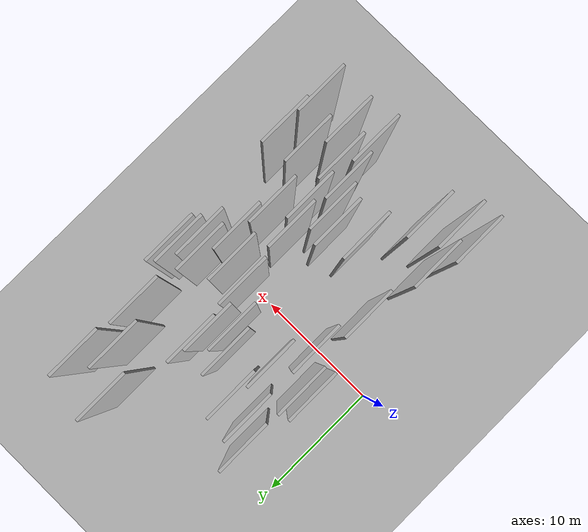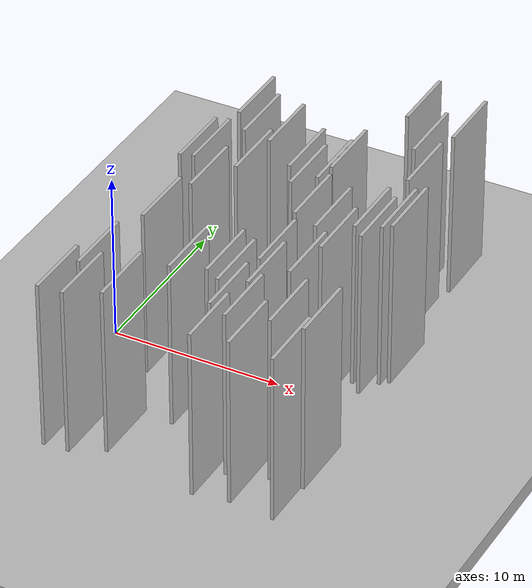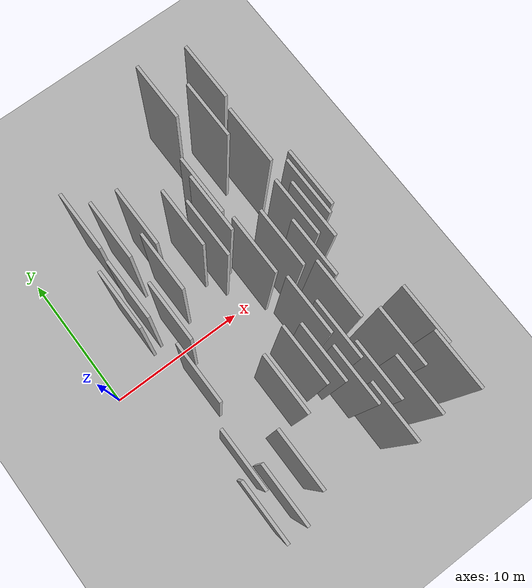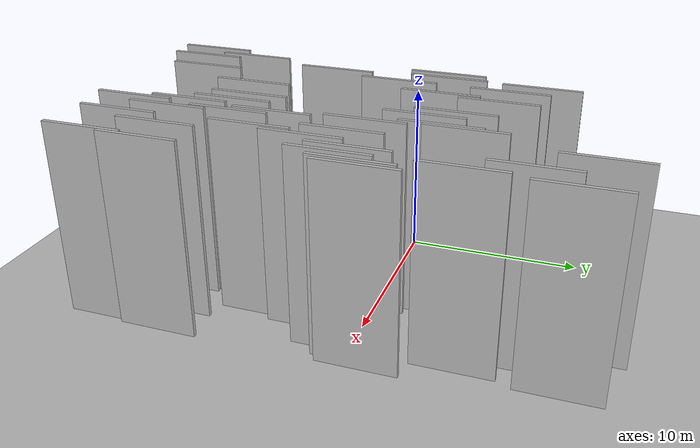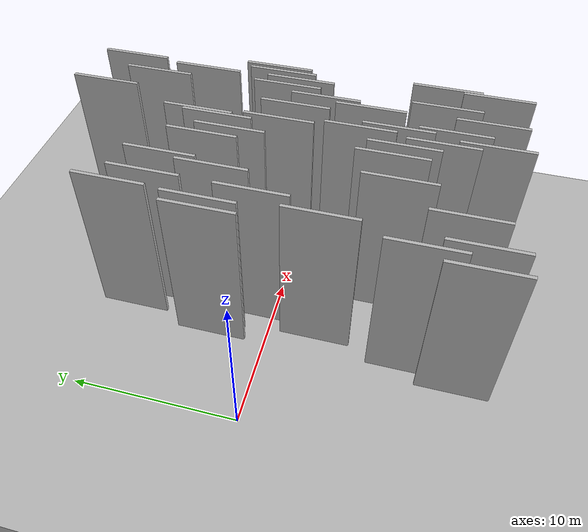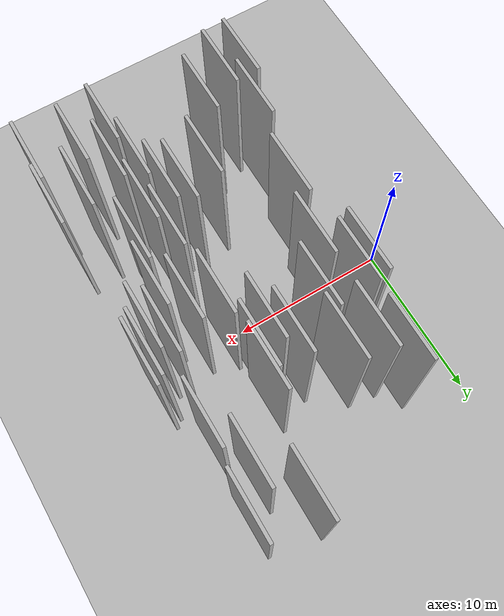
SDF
<?xml version="1.0" encoding="utf-8"?>

<sdf version="1.6">

   <world name="default">

      <gui fullscreen="0">

         <camera name="user_camera">

            <pose>-15 0 4.57585 0 0 0</pose>

            <view_controller>orbit</view_controller>

         </camera>

      </gui>

      <scene>

         <sky>

           <clouds>

             <speed>12</speed>

           </clouds>

         </sky>

         <ambient>0.4 0.4 0.4 1</ambient>

         <background>0.7 0.7 0.7 1</background>

         <shadows>1</shadows>

      </scene>

      <gravity>0 0 -9.8066</gravity>

      <magnetic_field>6e-06 2.3e-05 -4.2e-05</magnetic_field>

      <physics default="0" name="default_physics" type="ode">

         <ode>

            <solver>

               <type>quick</type>

               <iters>10</iters>

               <sor>1.0</sor>

               <use_dynamic_moi_rescaling>0</use_dynamic_moi_rescaling>

            </solver>

            <constraints>

               <cfm>0</cfm>

               <erp>0.2</erp>

               <contact_max_correcting_vel>100</contact_max_correcting_vel>

               <contact_surface_layer>0.001</contact_surface_layer>

            </constraints>

         </ode>

         <max_step_size>0.004</max_step_size>

         <real_time_factor>1</real_time_factor>

         <real_time_update_rate>250</real_time_update_rate>

      </physics>

      <light name="sun" type="directional">

         <cast_shadows>1</cast_shadows>

         <pose>0 0 10 0 0 0</pose>

         <diffuse>0.8 0.8 0.8 1</diffuse>

         <specular>0.2 0.2 0.2 1</specular>

         <attenuation>

            <range>1000</range>

            <constant>0.9</constant>

            <linear>0.01</linear>

            <quadratic>0.001</quadratic>

         </attenuation>

         <direction>-0.5 0.1 -0.9</direction>

      </light>

      <include>

         <name>ground_plane_1</name>

         <uri>model://HANNAS_ground_plane</uri>

         <pose>0 0 0  0 0 0</pose>

      </include>

      <include>

         <name>ground_plane_2</name>

         <uri>model://HANNAS_ground_plane</uri>

         <pose>100 0 0  0 0 0</pose>

      </include>

      <model name="HANNAS_wall_1">

         <static>1</static>

         <pose frame="">3.7994 2.6363 2.5 0.000000 0.000000 1.570796</pose>

         <link name="link">

            <pose frame="">0 0 5.00 0 0 0</pose>

            <collision name="collision">

               <geometry>

                  <box>

                     <size>4.00 0.2 10.00</size>

                  </box>

               </geometry>

               <max_contacts>10</max_contacts>

               <surface>

                  <contact>

                     <ode/>

                  </contact>

                  <bounce/>

                  <friction>

                     <torsional>

                        <ode/>

                     </torsional>

                     <ode/>

                  </friction>

               </surface>

            </collision>

            <visual name="visual">

               <cast_shadows>0</cast_shadows>

               <geometry>

                  <box>

                     <size>4.00 0.2 10.00</size>

                  </box>

               </geometry>

               <material>

                  <script>

                     <uri>model://HANNAS_wall/materials/scripts</uri>

                     <uri>model://HANNAS_wall/materials/textures</uri>

                     <name>vrc/HANNAS_wall</name>

                  </script>

               </material>

            </visual>

            <self_collide>0</self_collide>

            <enable_wind>0</enable_wind>

            <kinematic>0</kinematic>

         </link>

      </model>

      <model name="HANNAS_wall_2">

         <static>1</static>

         <pose frame="">15.5786 0.3871 2.5 0.000000 0.000000 1.570796</pose>

         <link name="link">

            <pose frame="">0 0 5.00 0 0 0</pose>

            <collision name="collision">

               <geometry>

                  <box>

                     <size>4.00 0.2 10.00</size>

                  </box>

               </geometry>

               <max_contacts>10</max_contacts>

               <surface>

                  <contact>

                     <ode/>

                  </contact>

                  <bounce/>

                  <friction>

                     <torsional>

                        <ode/>

                     </torsional>

                     <ode/>

                  </friction>

               </surface>

            </collision>

            <visual name="visual">

               <cast_shadows>0</cast_shadows>

               <geometry>

                  <box>

                     <size>4.00 0.2 10.00</size>

                  </box>

               </geometry>

               <material>

                  <script>

                     <uri>model://HANNAS_wall/materials/scripts</uri>

                     <uri>model://HANNAS_wall/materials/textures</uri>

                     <name>vrc/HANNAS_wall</name>

                  </script>

               </material>

            </visual>

            <self_collide>0</self_collide>

            <enable_wind>0</enable_wind>

            <kinematic>0</kinematic>

         </link>

      </model>

      <model name="HANNAS_wall_3">

         <static>1</static>

         <pose frame="">10.0864 -5.8652 2.5 0.000000 0.000000 1.570796</pose>

         <link name="link">

            <pose frame="">0 0 5.00 0 0 0</pose>

            <collision name="collision">

               <geometry>

                  <box>

                     <size>4.00 0.2 10.00</size>

                  </box>

               </geometry>

               <max_contacts>10</max_contacts>

               <surface>

                  <contact>

                     <ode/>

                  </contact>

                  <bounce/>

                  <friction>

                     <torsional>

                        <ode/>

                     </torsional>

                     <ode/>

                  </friction>

               </surface>

            </collision>

            <visual name="visual">

               <cast_shadows>0</cast_shadows>

               <geometry>

                  <box>

                     <size>4.00 0.2 10.00</size>

                  </box>

               </geometry>

               <material>

                  <script>

                     <uri>model://HANNAS_wall/materials/scripts</uri>

                     <uri>model://HANNAS_wall/materials/textures</uri>

                     <name>vrc/HANNAS_wall</name>

                  </script>

               </material>

            </visual>

            <self_collide>0</self_collide>

            <enable_wind>0</enable_wind>

            <kinematic>0</kinematic>

         </link>

      </model>

      <model name="HANNAS_wall_4">

         <static>1</static>

         <pose frame="">16.6024 1.9470 2.5 0.000000 0.000000 1.570796</pose>

         <link name="link">

            <pose frame="">0 0 5.00 0 0 0</pose>

            <collision name="collision">

               <geometry>

                  <box>

                     <size>4.00 0.2 10.00</size>

                  </box>

               </geometry>

               <max_contacts>10</max_contacts>

               <surface>

                  <contact>

                     <ode/>

                  </contact>

                  <bounce/>

                  <friction>

                     <torsional>

                        <ode/>

                     </torsional>

                     <ode/>

                  </friction>

               </surface>

            </collision>

            <visual name="visual">

               <cast_shadows>0</cast_shadows>

               <geometry>

                  <box>

                     <size>4.00 0.2 10.00</size>

                  </box>

               </geometry>

               <material>

                  <script>

                     <uri>model://HANNAS_wall/materials/scripts</uri>

                     <uri>model://HANNAS_wall/materials/textures</uri>

                     <name>vrc/HANNAS_wall</name>

                  </script>

               </material>

            </visual>

            <self_collide>0</self_collide>

            <enable_wind>0</enable_wind>

            <kinematic>0</kinematic>

         </link>

      </model>

      <model name="HANNAS_wall_5">

         <static>1</static>

         <pose frame="">16.5574 -11.0055 2.5 0.000000 0.000000 1.570796</pose>

         <link name="link">

            <pose frame="">0 0 5.00 0 0 0</pose>

            <collision name="collision">

               <geometry>

                  <box>

                     <size>4.00 0.2 10.00</size>

                  </box>

               </geometry>

               <max_contacts>10</max_contacts>

               <surface>

                  <contact>

                     <ode/>

                  </contact>

                  <bounce/>

                  <friction>

                     <torsional>

                        <ode/>

                     </torsional>

                     <ode/>

                  </friction>

               </surface>

            </collision>

            <visual name="visual">

               <cast_shadows>0</cast_shadows>

               <geometry>

                  <box>

                     <size>4.00 0.2 10.00</size>

                  </box>

               </geometry>

               <material>

                  <script>

                     <uri>model://HANNAS_wall/materials/scripts</uri>

                     <uri>model://HANNAS_wall/materials/textures</uri>

                     <name>vrc/HANNAS_wall</name>

                  </script>

               </material>

            </visual>

            <self_collide>0</self_collide>

            <enable_wind>0</enable_wind>

            <kinematic>0</kinematic>

         </link>

      </model>

      <model name="HANNAS_wall_6">

         <static>1</static>

         <pose frame="">5.6408 0.4742 2.5 0.000000 0.000000 1.570796</pose>

         <link name="link">

            <pose frame="">0 0 5.00 0 0 0</pose>

            <collision name="collision">

               <geometry>

                  <box>

                     <size>4.00 0.2 10.00</size>

                  </box>

               </geometry>

               <max_contacts>10</max_contacts>

               <surface>

                  <contact>

                     <ode/>

                  </contact>

                  <bounce/>

                  <friction>

                     <torsional>

                        <ode/>

                     </torsional>

                     <ode/>

                  </friction>

               </surface>

            </collision>

            <visual name="visual">

               <cast_shadows>0</cast_shadows>

               <geometry>

                  <box>

                     <size>4.00 0.2 10.00</size>

                  </box>

               </geometry>

               <material>

                  <script>

                     <uri>model://HANNAS_wall/materials/scripts</uri>

                     <uri>model://HANNAS_wall/materials/textures</uri>

                     <name>vrc/HANNAS_wall</name>

                  </script>

               </material>

            </visual>

            <self_collide>0</self_collide>

            <enable_wind>0</enable_wind>

            <kinematic>0</kinematic>

         </link>

      </model>

      <model name="HANNAS_wall_7">

         <static>1</static>

         <pose frame="">11.9720 -3.8224 2.5 0.000000 0.000000 1.570796</pose>

         <link name="link">

            <pose frame="">0 0 5.00 0 0 0</pose>

            <collision name="collision">

               <geometry>

                  <box>

                     <size>4.00 0.2 10.00</size>

                  </box>

               </geometry>

               <max_contacts>10</max_contacts>

               <surface>

                  <contact>

                     <ode/>

                  </contact>

                  <bounce/>

                  <friction>

                     <torsional>

                        <ode/>

                     </torsional>

                     <ode/>

                  </friction>

               </surface>

            </collision>

            <visual name="visual">

               <cast_shadows>0</cast_shadows>

               <geometry>

                  <box>

                     <size>4.00 0.2 10.00</size>

                  </box>

               </geometry>

               <material>

                  <script>

                     <uri>model://HANNAS_wall/materials/scripts</uri>

                     <uri>model://HANNAS_wall/materials/textures</uri>

                     <name>vrc/HANNAS_wall</name>

                  </script>

               </material>

            </visual>

            <self_collide>0</self_collide>

            <enable_wind>0</enable_wind>

            <kinematic>0</kinematic>

         </link>

      </model>

      <model name="HANNAS_wall_8">

         <static>1</static>

         <pose frame="">14.9060 1.0273 2.5 0.000000 0.000000 1.570796</pose>

         <link name="link">

            <pose frame="">0 0 5.00 0 0 0</pose>

            <collision name="collision">

               <geometry>

                  <box>

                     <size>4.00 0.2 10.00</size>

                  </box>

               </geometry>

               <max_contacts>10</max_contacts>

               <surface>

                  <contact>

                     <ode/>

                  </contact>

                  <bounce/>

                  <friction>

                     <torsional>

                        <ode/>

                     </torsional>

                     <ode/>

                  </friction>

               </surface>

            </collision>

            <visual name="visual">

               <cast_shadows>0</cast_shadows>

               <geometry>

                  <box>

                     <size>4.00 0.2 10.00</size>

                  </box>

               </geometry>

               <material>

                  <script>

                     <uri>model://HANNAS_wall/materials/scripts</uri>

                     <uri>model://HANNAS_wall/materials/textures</uri>

                     <name>vrc/HANNAS_wall</name>

                  </script>

               </material>

            </visual>

            <self_collide>0</self_collide>

            <enable_wind>0</enable_wind>

            <kinematic>0</kinematic>

         </link>

      </model>

      <model name="HANNAS_wall_9">

         <static>1</static>

         <pose frame="">12.4231 -5.8423 2.5 0.000000 0.000000 1.570796</pose>

         <link name="link">

            <pose frame="">0 0 5.00 0 0 0</pose>

            <collision name="collision">

               <geometry>

                  <box>

                     <size>4.00 0.2 10.00</size>

                  </box>

               </geometry>

               <max_contacts>10</max_contacts>

               <surface>

                  <contact>

                     <ode/>

                  </contact>

                  <bounce/>

                  <friction>

                     <torsional>

                        <ode/>

                     </torsional>

                     <ode/>

                  </friction>

               </surface>

            </collision>

            <visual name="visual">

               <cast_shadows>0</cast_shadows>

               <geometry>

                  <box>

                     <size>4.00 0.2 10.00</size>

                  </box>

               </geometry>

               <material>

                  <script>

                     <uri>model://HANNAS_wall/materials/scripts</uri>

                     <uri>model://HANNAS_wall/materials/textures</uri>

                     <name>vrc/HANNAS_wall</name>

                  </script>

               </material>

            </visual>

            <self_collide>0</self_collide>

            <enable_wind>0</enable_wind>

            <kinematic>0</kinematic>

         </link>

      </model>

      <model name="HANNAS_wall_10">

         <static>1</static>

         <pose frame="">4.6987 -11.0254 2.5 0.000000 0.000000 1.570796</pose>

         <link name="link">

            <pose frame="">0 0 5.00 0 0 0</pose>

            <collision name="collision">

               <geometry>

                  <box>

                     <size>4.00 0.2 10.00</size>

                  </box>

               </geometry>

               <max_contacts>10</max_contacts>

               <surface>

                  <contact>

                     <ode/>

                  </contact>

                  <bounce/>

                  <friction>

                     <torsional>

                        <ode/>

                     </torsional>

                     <ode/>

                  </friction>

               </surface>

            </collision>

            <visual name="visual">

               <cast_shadows>0</cast_shadows>

               <geometry>

                  <box>

                     <size>4.00 0.2 10.00</size>

                  </box>

               </geometry>

               <material>

                  <script>

                     <uri>model://HANNAS_wall/materials/scripts</uri>

                     <uri>model://HANNAS_wall/materials/textures</uri>

                     <name>vrc/HANNAS_wall</name>

                  </script>

               </material>

            </visual>

            <self_collide>0</self_collide>

            <enable_wind>0</enable_wind>

            <kinematic>0</kinematic>

         </link>

      </model>

      <model name="HANNAS_wall_11">

         <static>1</static>

         <pose frame="">15.4312 6.0765 2.5 0.000000 0.000000 1.570796</pose>

         <link name="link">

            <pose frame="">0 0 5.00 0 0 0</pose>

            <collision name="collision">

               <geometry>

                  <box>

                     <size>4.00 0.2 10.00</size>

                  </box>

               </geometry>

               <max_contacts>10</max_contacts>

               <surface>

                  <contact>

                     <ode/>

                  </contact>

                  <bounce/>

                  <friction>

                     <torsional>

                        <ode/>

                     </torsional>

                     <ode/>

                  </friction>

               </surface>

            </collision>

            <visual name="visual">

               <cast_shadows>0</cast_shadows>

               <geometry>

                  <box>

                     <size>4.00 0.2 10.00</size>

                  </box>

               </geometry>

               <material>

                  <script>

                     <uri>model://HANNAS_wall/materials/scripts</uri>

                     <uri>model://HANNAS_wall/materials/textures</uri>

                     <name>vrc/HANNAS_wall</name>

                  </script>

               </material>

            </visual>

            <self_collide>0</self_collide>

            <enable_wind>0</enable_wind>

            <kinematic>0</kinematic>

         </link>

      </model>

      <model name="HANNAS_wall_12">

         <static>1</static>

         <pose frame="">14.2291 -1.4063 2.5 0.000000 0.000000 1.570796</pose>

         <link name="link">

            <pose frame="">0 0 5.00 0 0 0</pose>

            <collision name="collision">

               <geometry>

                  <box>

                     <size>4.00 0.2 10.00</size>

                  </box>

               </geometry>

               <max_contacts>10</max_contacts>

               <surface>

                  <contact>

                     <ode/>

                  </contact>

                  <bounce/>

                  <friction>

                     <torsional>

                        <ode/>

                     </torsional>

                     <ode/>

                  </friction>

               </surface>

            </collision>

            <visual name="visual">

               <cast_shadows>0</cast_shadows>

               <geometry>

                  <box>

                     <size>4.00 0.2 10.00</size>

                  </box>

               </geometry>

               <material>

                  <script>

                     <uri>model://HANNAS_wall/materials/scripts</uri>

                     <uri>model://HANNAS_wall/materials/textures</uri>

                     <name>vrc/HANNAS_wall</name>

                  </script>

               </material>

            </visual>

            <self_collide>0</self_collide>

            <enable_wind>0</enable_wind>

            <kinematic>0</kinematic>

         </link>

      </model>

      <model name="HANNAS_wall_13">

         <static>1</static>

         <pose frame="">4.0524 -8.2985 2.5 0.000000 0.000000 1.570796</pose>

         <link name="link">

            <pose frame="">0 0 5.00 0 0 0</pose>

            <collision name="collision">

               <geometry>

                  <box>

                     <size>4.00 0.2 10.00</size>

                  </box>

               </geometry>

               <max_contacts>10</max_contacts>

               <surface>

                  <contact>

                     <ode/>

                  </contact>

                  <bounce/>

                  <friction>

                     <torsional>

                        <ode/>

                     </torsional>

                     <ode/>

                  </friction>

               </surface>

            </collision>

            <visual name="visual">

               <cast_shadows>0</cast_shadows>

               <geometry>

                  <box>

                     <size>4.00 0.2 10.00</size>

                  </box>

               </geometry>

               <material>

                  <script>

                     <uri>model://HANNAS_wall/materials/scripts</uri>

                     <uri>model://HANNAS_wall/materials/textures</uri>

                     <name>vrc/HANNAS_wall</name>

                  </script>

               </material>

            </visual>

            <self_collide>0</self_collide>

            <enable_wind>0</enable_wind>

            <kinematic>0</kinematic>

         </link>

      </model>

      <model name="HANNAS_wall_14">

         <static>1</static>

         <pose frame="">6.4614 -10.0986 2.5 0.000000 0.000000 1.570796</pose>

         <link name="link">

            <pose frame="">0 0 5.00 0 0 0</pose>

            <collision name="collision">

               <geometry>

                  <box>

                     <size>4.00 0.2 10.00</size>

                  </box>

               </geometry>

               <max_contacts>10</max_contacts>

               <surface>

                  <contact>

                     <ode/>

                  </contact>

                  <bounce/>

                  <friction>

                     <torsional>

                        <ode/>

                     </torsional>

                     <ode/>

                  </friction>

               </surface>

            </collision>

            <visual name="visual">

               <cast_shadows>0</cast_shadows>

               <geometry>

                  <box>

                     <size>4.00 0.2 10.00</size>

                  </box>

               </geometry>

               <material>

                  <script>

                     <uri>model://HANNAS_wall/materials/scripts</uri>

                     <uri>model://HANNAS_wall/materials/textures</uri>

                     <name>vrc/HANNAS_wall</name>

                  </script>

               </material>

            </visual>

            <self_collide>0</self_collide>

            <enable_wind>0</enable_wind>

            <kinematic>0</kinematic>

         </link>

      </model>

      <model name="HANNAS_wall_15">

         <static>1</static>

         <pose frame="">14.9442 -8.2278 2.5 0.000000 0.000000 1.570796</pose>

         <link name="link">

            <pose frame="">0 0 5.00 0 0 0</pose>

            <collision name="collision">

               <geometry>

                  <box>

                     <size>4.00 0.2 10.00</size>

                  </box>

               </geometry>

               <max_contacts>10</max_contacts>

               <surface>

                  <contact>

                     <ode/>

                  </contact>

                  <bounce/>

                  <friction>

                     <torsional>

                        <ode/>

                     </torsional>

                     <ode/>

                  </friction>

               </surface>

            </collision>

            <visual name="visual">

               <cast_shadows>0</cast_shadows>

               <geometry>

                  <box>

                     <size>4.00 0.2 10.00</size>

                  </box>

               </geometry>

               <material>

                  <script>

                     <uri>model://HANNAS_wall/materials/scripts</uri>

                     <uri>model://HANNAS_wall/materials/textures</uri>

                     <name>vrc/HANNAS_wall</name>

                  </script>

               </material>

            </visual>

            <self_collide>0</self_collide>

            <enable_wind>0</enable_wind>

            <kinematic>0</kinematic>

         </link>

      </model>

      <model name="HANNAS_wall_16">

         <static>1</static>

         <pose frame="">11.6333 0.6828 2.5 0.000000 0.000000 1.570796</pose>

         <link name="link">

            <pose frame="">0 0 5.00 0 0 0</pose>

            <collision name="collision">

               <geometry>

                  <box>

                     <size>4.00 0.2 10.00</size>

                  </box>

               </geometry>

               <max_contacts>10</max_contacts>

               <surface>

                  <contact>

                     <ode/>

                  </contact>

                  <bounce/>

                  <friction>

                     <torsional>

                        <ode/>

                     </torsional>

                     <ode/>

                  </friction>

               </surface>

            </collision>

            <visual name="visual">

               <cast_shadows>0</cast_shadows>

               <geometry>

                  <box>

                     <size>4.00 0.2 10.00</size>

                  </box>

               </geometry>

               <material>

                  <script>

                     <uri>model://HANNAS_wall/materials/scripts</uri>

                     <uri>model://HANNAS_wall/materials/textures</uri>

                     <name>vrc/HANNAS_wall</name>

                  </script>

               </material>

            </visual>

            <self_collide>0</self_collide>

            <enable_wind>0</enable_wind>

            <kinematic>0</kinematic>

         </link>

      </model>

      <model name="HANNAS_wall_17">

         <static>1</static>

         <pose frame="">5.6771 6.2340 2.5 0.000000 0.000000 1.570796</pose>

         <link name="link">

            <pose frame="">0 0 5.00 0 0 0</pose>

            <collision name="collision">

               <geometry>

                  <box>

                     <size>4.00 0.2 10.00</size>

                  </box>

               </geometry>

               <max_contacts>10</max_contacts>

               <surface>

                  <contact>

                     <ode/>

                  </contact>

                  <bounce/>

                  <friction>

                     <torsional>

                        <ode/>

                     </torsional>

                     <ode/>

                  </friction>

               </surface>

            </collision>

            <visual name="visual">

               <cast_shadows>0</cast_shadows>

               <geometry>

                  <box>

                     <size>4.00 0.2 10.00</size>

                  </box>

               </geometry>

               <material>

                  <script>

                     <uri>model://HANNAS_wall/materials/scripts</uri>

                     <uri>model://HANNAS_wall/materials/textures</uri>

                     <name>vrc/HANNAS_wall</name>

                  </script>

               </material>

            </visual>

            <self_collide>0</self_collide>

            <enable_wind>0</enable_wind>

            <kinematic>0</kinematic>

         </link>

      </model>

      <model name="HANNAS_wall_18">

         <static>1</static>

         <pose frame="">11.6100 -8.3505 2.5 0.000000 0.000000 1.570796</pose>

         <link name="link">

            <pose frame="">0 0 5.00 0 0 0</pose>

            <collision name="collision">

               <geometry>

                  <box>

                     <size>4.00 0.2 10.00</size>

                  </box>

               </geometry>

               <max_contacts>10</max_contacts>

               <surface>

                  <contact>

                     <ode/>

                  </contact>

                  <bounce/>

                  <friction>

                     <torsional>

                        <ode/>

                     </torsional>

                     <ode/>

                  </friction>

               </surface>

            </collision>

            <visual name="visual">

               <cast_shadows>0</cast_shadows>

               <geometry>

                  <box>

                     <size>4.00 0.2 10.00</size>

                  </box>

               </geometry>

               <material>

                  <script>

                     <uri>model://HANNAS_wall/materials/scripts</uri>

                     <uri>model://HANNAS_wall/materials/textures</uri>

                     <name>vrc/HANNAS_wall</name>

                  </script>

               </material>

            </visual>

            <self_collide>0</self_collide>

            <enable_wind>0</enable_wind>

            <kinematic>0</kinematic>

         </link>

      </model>

      <model name="HANNAS_wall_19">

         <static>1</static>

         <pose frame="">9.3649 4.3703 2.5 0.000000 0.000000 1.570796</pose>

         <link name="link">

            <pose frame="">0 0 5.00 0 0 0</pose>

            <collision name="collision">

               <geometry>

                  <box>

                     <size>4.00 0.2 10.00</size>

                  </box>

               </geometry>

               <max_contacts>10</max_contacts>

               <surface>

                  <contact>

                     <ode/>

                  </contact>

                  <bounce/>

                  <friction>

                     <torsional>

                        <ode/>

                     </torsional>

                     <ode/>

                  </friction>

               </surface>

            </collision>

            <visual name="visual">

               <cast_shadows>0</cast_shadows>

               <geometry>

                  <box>

                     <size>4.00 0.2 10.00</size>

                  </box>

               </geometry>

               <material>

                  <script>

                     <uri>model://HANNAS_wall/materials/scripts</uri>

                     <uri>model://HANNAS_wall/materials/textures</uri>

                     <name>vrc/HANNAS_wall</name>

                  </script>

               </material>

            </visual>

            <self_collide>0</self_collide>

            <enable_wind>0</enable_wind>

            <kinematic>0</kinematic>

         </link>

      </model>

      <model name="HANNAS_wall_20">

         <static>1</static>

         <pose frame="">6.9376 2.9967 2.5 0.000000 0.000000 1.570796</pose>

         <link name="link">

            <pose frame="">0 0 5.00 0 0 0</pose>

            <collision name="collision">

               <geometry>

                  <box>

                     <size>4.00 0.2 10.00</size>

                  </box>

               </geometry>

               <max_contacts>10</max_contacts>

               <surface>

                  <contact>

                     <ode/>

                  </contact>

                  <bounce/>

                  <friction>

                     <torsional>

                        <ode/>

                     </torsional>

                     <ode/>

                  </friction>

               </surface>

            </collision>

            <visual name="visual">

               <cast_shadows>0</cast_shadows>

               <geometry>

                  <box>

                     <size>4.00 0.2 10.00</size>

                  </box>

               </geometry>

               <material>

                  <script>

                     <uri>model://HANNAS_wall/materials/scripts</uri>

                     <uri>model://HANNAS_wall/materials/textures</uri>

                     <name>vrc/HANNAS_wall</name>

                  </script>

               </material>

            </visual>

            <self_collide>0</self_collide>

            <enable_wind>0</enable_wind>

            <kinematic>0</kinematic>

         </link>

      </model>

      <model name="HANNAS_wall_21">

         <static>1</static>

         <pose frame="">16.1842 1.6033 2.5 0.000000 0.000000 1.570796</pose>

         <link name="link">

            <pose frame="">0 0 5.00 0 0 0</pose>

            <collision name="collision">

               <geometry>

                  <box>

                     <size>4.00 0.2 10.00</size>

                  </box>

               </geometry>

               <max_contacts>10</max_contacts>

               <surface>

                  <contact>

                     <ode/>

                  </contact>

                  <bounce/>

                  <friction>

                     <torsional>

                        <ode/>

                     </torsional>

                     <ode/>

                  </friction>

               </surface>

            </collision>

            <visual name="visual">

               <cast_shadows>0</cast_shadows>

               <geometry>

                  <box>

                     <size>4.00 0.2 10.00</size>

                  </box>

               </geometry>

               <material>

                  <script>

                     <uri>model://HANNAS_wall/materials/scripts</uri>

                     <uri>model://HANNAS_wall/materials/textures</uri>

                     <name>vrc/HANNAS_wall</name>

                  </script>

               </material>

            </visual>

            <self_collide>0</self_collide>

            <enable_wind>0</enable_wind>

            <kinematic>0</kinematic>

         </link>

      </model>

      <model name="HANNAS_wall_22">

         <static>1</static>

         <pose frame="">12.7036 11.4861 2.5 0.000000 0.000000 1.570796</pose>

         <link name="link">

            <pose frame="">0 0 5.00 0 0 0</pose>

            <collision name="collision">

               <geometry>

                  <box>

                     <size>4.00 0.2 10.00</size>

                  </box>

               </geometry>

               <max_contacts>10</max_contacts>

               <surface>

                  <contact>

                     <ode/>

                  </contact>

                  <bounce/>

                  <friction>

                     <torsional>

                        <ode/>

                     </torsional>

                     <ode/>

                  </friction>

               </surface>

            </collision>

            <visual name="visual">

               <cast_shadows>0</cast_shadows>

               <geometry>

                  <box>

                     <size>4.00 0.2 10.00</size>

                  </box>

               </geometry>

               <material>

                  <script>

                     <uri>model://HANNAS_wall/materials/scripts</uri>

                     <uri>model://HANNAS_wall/materials/textures</uri>

                     <name>vrc/HANNAS_wall</name>

                  </script>

               </material>

            </visual>

            <self_collide>0</self_collide>

            <enable_wind>0</enable_wind>

            <kinematic>0</kinematic>

         </link>

      </model>

      <model name="HANNAS_wall_23">

         <static>1</static>

         <pose frame="">16.7609 -8.0684 2.5 0.000000 0.000000 1.570796</pose>

         <link name="link">

            <pose frame="">0 0 5.00 0 0 0</pose>

            <collision name="collision">

               <geometry>

                  <box>

                     <size>4.00 0.2 10.00</size>

                  </box>

               </geometry>

               <max_contacts>10</max_contacts>

               <surface>

                  <contact>

                     <ode/>

                  </contact>

                  <bounce/>

                  <friction>

                     <torsional>

                        <ode/>

                     </torsional>

                     <ode/>

                  </friction>

               </surface>

            </collision>

            <visual name="visual">

               <cast_shadows>0</cast_shadows>

               <geometry>

                  <box>

                     <size>4.00 0.2 10.00</size>

                  </box>

               </geometry>

               <material>

                  <script>

                     <uri>model://HANNAS_wall/materials/scripts</uri>

                     <uri>model://HANNAS_wall/materials/textures</uri>

                     <name>vrc/HANNAS_wall</name>

                  </script>

               </material>

            </visual>

            <self_collide>0</self_collide>

            <enable_wind>0</enable_wind>

            <kinematic>0</kinematic>

         </link>

      </model>

      <model name="HANNAS_wall_24">

         <static>1</static>

         <pose frame="">10.1370 3.0564 2.5 0.000000 0.000000 1.570796</pose>

         <link name="link">

            <pose frame="">0 0 5.00 0 0 0</pose>

            <collision name="collision">

               <geometry>

                  <box>

                     <size>4.00 0.2 10.00</size>

                  </box>

               </geometry>

               <max_contacts>10</max_contacts>

               <surface>

                  <contact>

                     <ode/>

                  </contact>

                  <bounce/>

                  <friction>

                     <torsional>

                        <ode/>

                     </torsional>

                     <ode/>

                  </friction>

               </surface>

            </collision>

            <visual name="visual">

               <cast_shadows>0</cast_shadows>

               <geometry>

                  <box>

                     <size>4.00 0.2 10.00</size>

                  </box>

               </geometry>

               <material>

                  <script>

                     <uri>model://HANNAS_wall/materials/scripts</uri>

                     <uri>model://HANNAS_wall/materials/textures</uri>

                     <name>vrc/HANNAS_wall</name>

                  </script>

               </material>

            </visual>

            <self_collide>0</self_collide>

            <enable_wind>0</enable_wind>

            <kinematic>0</kinematic>

         </link>

      </model>

      <model name="HANNAS_wall_25">

         <static>1</static>

         <pose frame="">4.8834 -3.1926 2.5 0.000000 0.000000 1.570796</pose>

         <link name="link">

            <pose frame="">0 0 5.00 0 0 0</pose>

            <collision name="collision">

               <geometry>

                  <box>

                     <size>4.00 0.2 10.00</size>

                  </box>

               </geometry>

               <max_contacts>10</max_contacts>

               <surface>

                  <contact>

                     <ode/>

                  </contact>

                  <bounce/>

                  <friction>

                     <torsional>

                        <ode/>

                     </torsional>

                     <ode/>

                  </friction>

               </surface>

            </collision>

            <visual name="visual">

               <cast_shadows>0</cast_shadows>

               <geometry>

                  <box>

                     <size>4.00 0.2 10.00</size>

                  </box>

               </geometry>

               <material>

                  <script>

                     <uri>model://HANNAS_wall/materials/scripts</uri>

                     <uri>model://HANNAS_wall/materials/textures</uri>

                     <name>vrc/HANNAS_wall</name>

                  </script>

               </material>

            </visual>

            <self_collide>0</self_collide>

            <enable_wind>0</enable_wind>

            <kinematic>0</kinematic>

         </link>

      </model>

      <model name="HANNAS_wall_26">

         <static>1</static>

         <pose frame="">12.7527 -8.8900 2.5 0.000000 0.000000 1.570796</pose>

         <link name="link">

            <pose frame="">0 0 5.00 0 0 0</pose>

            <collision name="collision">

               <geometry>

                  <box>

                     <size>4.00 0.2 10.00</size>

                  </box>

               </geometry>

               <max_contacts>10</max_contacts>

               <surface>

                  <contact>

                     <ode/>

                  </contact>

                  <bounce/>

                  <friction>

                     <torsional>

                        <ode/>

                     </torsional>

                     <ode/>

                  </friction>

               </surface>

            </collision>

            <visual name="visual">

               <cast_shadows>0</cast_shadows>

               <geometry>

                  <box>

                     <size>4.00 0.2 10.00</size>

                  </box>

               </geometry>

               <material>

                  <script>

                     <uri>model://HANNAS_wall/materials/scripts</uri>

                     <uri>model://HANNAS_wall/materials/textures</uri>

                     <name>vrc/HANNAS_wall</name>

                  </script>

               </material>

            </visual>

            <self_collide>0</self_collide>

            <enable_wind>0</enable_wind>

            <kinematic>0</kinematic>

         </link>

      </model>

      <model name="HANNAS_wall_27">

         <static>1</static>

         <pose frame="">14.0019 -10.7926 2.5 0.000000 0.000000 1.570796</pose>

         <link name="link">

            <pose frame="">0 0 5.00 0 0 0</pose>

            <collision name="collision">

               <geometry>

                  <box>

                     <size>4.00 0.2 10.00</size>

                  </box>

               </geometry>

               <max_contacts>10</max_contacts>

               <surface>

                  <contact>

                     <ode/>

                  </contact>

                  <bounce/>

                  <friction>

                     <torsional>

                        <ode/>

                     </torsional>

                     <ode/>

                  </friction>

               </surface>

            </collision>

            <visual name="visual">

               <cast_shadows>0</cast_shadows>

               <geometry>

                  <box>

                     <size>4.00 0.2 10.00</size>

                  </box>

               </geometry>

               <material>

                  <script>

                     <uri>model://HANNAS_wall/materials/scripts</uri>

                     <uri>model://HANNAS_wall/materials/textures</uri>

                     <name>vrc/HANNAS_wall</name>

                  </script>

               </material>

            </visual>

            <self_collide>0</self_collide>

            <enable_wind>0</enable_wind>

            <kinematic>0</kinematic>

         </link>

      </model>

      <model name="HANNAS_wall_28">

         <static>1</static>

         <pose frame="">14.4186 8.8065 2.5 0.000000 0.000000 1.570796</pose>

         <link name="link">

            <pose frame="">0 0 5.00 0 0 0</pose>

            <collision name="collision">

               <geometry>

                  <box>

                     <size>4.00 0.2 10.00</size>

                  </box>

               </geometry>

               <max_contacts>10</max_contacts>

               <surface>

                  <contact>

                     <ode/>

                  </contact>

                  <bounce/>

                  <friction>

                     <torsional>

                        <ode/>

                     </torsional>

                     <ode/>

                  </friction>

               </surface>

            </collision>

            <visual name="visual">

               <cast_shadows>0</cast_shadows>

               <geometry>

                  <box>

                     <size>4.00 0.2 10.00</size>

                  </box>

               </geometry>

               <material>

                  <script>

                     <uri>model://HANNAS_wall/materials/scripts</uri>

                     <uri>model://HANNAS_wall/materials/textures</uri>

                     <name>vrc/HANNAS_wall</name>

                  </script>

               </material>

            </visual>

            <self_collide>0</self_collide>

            <enable_wind>0</enable_wind>

            <kinematic>0</kinematic>

         </link>

      </model>

      <model name="HANNAS_wall_29">

         <static>1</static>

         <pose frame="">11.1621 4.1066 2.5 0.000000 0.000000 1.570796</pose>

         <link name="link">

            <pose frame="">0 0 5.00 0 0 0</pose>

            <collision name="collision">

               <geometry>

                  <box>

                     <size>4.00 0.2 10.00</size>

                  </box>

               </geometry>

               <max_contacts>10</max_contacts>

               <surface>

                  <contact>

                     <ode/>

                  </contact>

                  <bounce/>

                  <friction>

                     <torsional>

                        <ode/>

                     </torsional>

                     <ode/>

                  </friction>

               </surface>

            </collision>

            <visual name="visual">

               <cast_shadows>0</cast_shadows>

               <geometry>

                  <box>

                     <size>4.00 0.2 10.00</size>

                  </box>

               </geometry>

               <material>

                  <script>

                     <uri>model://HANNAS_wall/materials/scripts</uri>

                     <uri>model://HANNAS_wall/materials/textures</uri>

                     <name>vrc/HANNAS_wall</name>

                  </script>

               </material>

            </visual>

            <self_collide>0</self_collide>

            <enable_wind>0</enable_wind>

            <kinematic>0</kinematic>

         </link>

      </model>

      <model name="HANNAS_wall_30">

         <static>1</static>

         <pose frame="">13.1247 0.1065 2.5 0.000000 0.000000 1.570796</pose>

         <link name="link">

            <pose frame="">0 0 5.00 0 0 0</pose>

            <collision name="collision">

               <geometry>

                  <box>

                     <size>4.00 0.2 10.00</size>

                  </box>

               </geometry>

               <max_contacts>10</max_contacts>

               <surface>

                  <contact>

                     <ode/>

                  </contact>

                  <bounce/>

                  <friction>

                     <torsional>

                        <ode/>

                     </torsional>

                     <ode/>

                  </friction>

               </surface>

            </collision>

            <visual name="visual">

               <cast_shadows>0</cast_shadows>

               <geometry>

                  <box>

                     <size>4.00 0.2 10.00</size>

                  </box>

               </geometry>

               <material>

                  <script>

                     <uri>model://HANNAS_wall/materials/scripts</uri>

                     <uri>model://HANNAS_wall/materials/textures</uri>

                     <name>vrc/HANNAS_wall</name>

                  </script>

               </material>

            </visual>

            <self_collide>0</self_collide>

            <enable_wind>0</enable_wind>

            <kinematic>0</kinematic>

         </link>

      </model>

      <model name="HANNAS_wall_31">

         <static>1</static>

         <pose frame="">12.0248 -11.1271 2.5 0.000000 0.000000 1.570796</pose>

         <link name="link">

            <pose frame="">0 0 5.00 0 0 0</pose>

            <collision name="collision">

               <geometry>

                  <box>

                     <size>4.00 0.2 10.00</size>

                  </box>

               </geometry>

               <max_contacts>10</max_contacts>

               <surface>

                  <contact>

                     <ode/>

                  </contact>

                  <bounce/>

                  <friction>

                     <torsional>

                        <ode/>

                     </torsional>

                     <ode/>

                  </friction>

               </surface>

            </collision>

            <visual name="visual">

               <cast_shadows>0</cast_shadows>

               <geometry>

                  <box>

                     <size>4.00 0.2 10.00</size>

                  </box>

               </geometry>

               <material>

                  <script>

                     <uri>model://HANNAS_wall/materials/scripts</uri>

                     <uri>model://HANNAS_wall/materials/textures</uri>

                     <name>vrc/HANNAS_wall</name>

                  </script>

               </material>

            </visual>

            <self_collide>0</self_collide>

            <enable_wind>0</enable_wind>

            <kinematic>0</kinematic>

         </link>

      </model>

      <model name="HANNAS_wall_32">

         <static>1</static>

         <pose frame="">7.3145 5.9773 2.5 0.000000 0.000000 1.570796</pose>

         <link name="link">

            <pose frame="">0 0 5.00 0 0 0</pose>

            <collision name="collision">

               <geometry>

                  <box>

                     <size>4.00 0.2 10.00</size>

                  </box>

               </geometry>

               <max_contacts>10</max_contacts>

               <surface>

                  <contact>

                     <ode/>

                  </contact>

                  <bounce/>

                  <friction>

                     <torsional>

                        <ode/>

                     </torsional>

                     <ode/>

                  </friction>

               </surface>

            </collision>

            <visual name="visual">

               <cast_shadows>0</cast_shadows>

               <geometry>

                  <box>

                     <size>4.00 0.2 10.00</size>

                  </box>

               </geometry>

               <material>

                  <script>

                     <uri>model://HANNAS_wall/materials/scripts</uri>

                     <uri>model://HANNAS_wall/materials/textures</uri>

                     <name>vrc/HANNAS_wall</name>

                  </script>

               </material>

            </visual>

            <self_collide>0</self_collide>

            <enable_wind>0</enable_wind>

            <kinematic>0</kinematic>

         </link>

      </model>

      <model name="HANNAS_wall_33">

         <static>1</static>

         <pose frame="">11.3689 5.2945 2.5 0.000000 0.000000 1.570796</pose>

         <link name="link">

            <pose frame="">0 0 5.00 0 0 0</pose>

            <collision name="collision">

               <geometry>

                  <box>

                     <size>4.00 0.2 10.00</size>

                  </box>

               </geometry>

               <max_contacts>10</max_contacts>

               <surface>

                  <contact>

                     <ode/>

                  </contact>

                  <bounce/>

                  <friction>

                     <torsional>

                        <ode/>

                     </torsional>

                     <ode/>

                  </friction>

               </surface>

            </collision>

            <visual name="visual">

               <cast_shadows>0</cast_shadows>

               <geometry>

                  <box>

                     <size>4.00 0.2 10.00</size>

                  </box>

               </geometry>

               <material>

                  <script>

                     <uri>model://HANNAS_wall/materials/scripts</uri>

                     <uri>model://HANNAS_wall/materials/textures</uri>

                     <name>vrc/HANNAS_wall</name>

                  </script>

               </material>

            </visual>

            <self_collide>0</self_collide>

            <enable_wind>0</enable_wind>

            <kinematic>0</kinematic>

         </link>

      </model>

      <model name="HANNAS_wall_34">

         <static>1</static>

         <pose frame="">10.9620 -6.3574 2.5 0.000000 0.000000 1.570796</pose>

         <link name="link">

            <pose frame="">0 0 5.00 0 0 0</pose>

            <collision name="collision">

               <geometry>

                  <box>

                     <size>4.00 0.2 10.00</size>

                  </box>

               </geometry>

               <max_contacts>10</max_contacts>

               <surface>

                  <contact>

                     <ode/>

                  </contact>

                  <bounce/>

                  <friction>

                     <torsional>

                        <ode/>

                     </torsional>

                     <ode/>

                  </friction>

               </surface>

            </collision>

            <visual name="visual">

               <cast_shadows>0</cast_shadows>

               <geometry>

                  <box>

                     <size>4.00 0.2 10.00</size>

                  </box>

               </geometry>

               <material>

                  <script>

                     <uri>model://HANNAS_wall/materials/scripts</uri>

                     <uri>model://HANNAS_wall/materials/textures</uri>

                     <name>vrc/HANNAS_wall</name>

                  </script>

               </material>

            </visual>

            <self_collide>0</self_collide>

            <enable_wind>0</enable_wind>

            <kinematic>0</kinematic>

         </link>

      </model>

      <model name="HANNAS_wall_35">

         <static>1</static>

         <pose frame="">15.7489 10.8149 2.5 0.000000 0.000000 1.570796</pose>

         <link name="link">

            <pose frame="">0 0 5.00 0 0 0</pose>

            <collision name="collision">

               <geometry>

                  <box>

                     <size>4.00 0.2 10.00</size>

                  </box>

               </geometry>

               <max_contacts>10</max_contacts>

               <surface>

                  <contact>

                     <ode/>

                  </contact>

                  <bounce/>

                  <friction>

                     <torsional>

                        <ode/>

                     </torsional>

                     <ode/>

                  </friction>

               </surface>

            </collision>

            <visual name="visual">

               <cast_shadows>0</cast_shadows>

               <geometry>

                  <box>

                     <size>4.00 0.2 10.00</size>

                  </box>

               </geometry>

               <material>

                  <script>

                     <uri>model://HANNAS_wall/materials/scripts</uri>

                     <uri>model://HANNAS_wall/materials/textures</uri>

                     <name>vrc/HANNAS_wall</name>

                  </script>

               </material>

            </visual>

            <self_collide>0</self_collide>

            <enable_wind>0</enable_wind>

            <kinematic>0</kinematic>

         </link>

      </model>

      <model name="HANNAS_wall_36">

         <static>1</static>

         <pose frame="">4.4958 2.8458 2.5 0.000000 0.000000 1.570796</pose>

         <link name="link">

            <pose frame="">0 0 5.00 0 0 0</pose>

            <collision name="collision">

               <geometry>

                  <box>

                     <size>4.00 0.2 10.00</size>

                  </box>

               </geometry>

               <max_contacts>10</max_contacts>

               <surface>

                  <contact>

                     <ode/>

                  </contact>

                  <bounce/>

                  <friction>

                     <torsional>

                        <ode/>

                     </torsional>

                     <ode/>

                  </friction>

               </surface>

            </collision>

            <visual name="visual">

               <cast_shadows>0</cast_shadows>

               <geometry>

                  <box>

                     <size>4.00 0.2 10.00</size>

                  </box>

               </geometry>

               <material>

                  <script>

                     <uri>model://HANNAS_wall/materials/scripts</uri>

                     <uri>model://HANNAS_wall/materials/textures</uri>

                     <name>vrc/HANNAS_wall</name>

                  </script>

               </material>

            </visual>

            <self_collide>0</self_collide>

            <enable_wind>0</enable_wind>

            <kinematic>0</kinematic>

         </link>

      </model>

      <model name="HANNAS_wall_37">

         <static>1</static>

         <pose frame="">3.3111 -11.0985 2.5 0.000000 0.000000 1.570796</pose>

         <link name="link">

            <pose frame="">0 0 5.00 0 0 0</pose>

            <collision name="collision">

               <geometry>

                  <box>

                     <size>4.00 0.2 10.00</size>

                  </box>

               </geometry>

               <max_contacts>10</max_contacts>

               <surface>

                  <contact>

                     <ode/>

                  </contact>

                  <bounce/>

                  <friction>

                     <torsional>

                        <ode/>

                     </torsional>

                     <ode/>

                  </friction>

               </surface>

            </collision>

            <visual name="visual">

               <cast_shadows>0</cast_shadows>

               <geometry>

                  <box>

                     <size>4.00 0.2 10.00</size>

                  </box>

               </geometry>

               <material>

                  <script>

                     <uri>model://HANNAS_wall/materials/scripts</uri>

                     <uri>model://HANNAS_wall/materials/textures</uri>

                     <name>vrc/HANNAS_wall</name>

                  </script>

               </material>

            </visual>

            <self_collide>0</self_collide>

            <enable_wind>0</enable_wind>

            <kinematic>0</kinematic>

         </link>

      </model>

      <model name="HANNAS_wall_38">

         <static>1</static>

         <pose frame="">4.6151 7.6487 2.5 0.000000 0.000000 1.570796</pose>

         <link name="link">

            <pose frame="">0 0 5.00 0 0 0</pose>

            <collision name="collision">

               <geometry>

                  <box>

                     <size>4.00 0.2 10.00</size>

                  </box>

               </geometry>

               <max_contacts>10</max_contacts>

               <surface>

                  <contact>

                     <ode/>

                  </contact>

                  <bounce/>

                  <friction>

                     <torsional>

                        <ode/>

                     </torsional>

                     <ode/>

                  </friction>

               </surface>

            </collision>

            <visual name="visual">

               <cast_shadows>0</cast_shadows>

               <geometry>

                  <box>

                     <size>4.00 0.2 10.00</size>

                  </box>

               </geometry>

               <material>

                  <script>

                     <uri>model://HANNAS_wall/materials/scripts</uri>

                     <uri>model://HANNAS_wall/materials/textures</uri>

                     <name>vrc/HANNAS_wall</name>

                  </script>

               </material>

            </visual>

            <self_collide>0</self_collide>

            <enable_wind>0</enable_wind>

            <kinematic>0</kinematic>

         </link>

      </model>

      <model name="HANNAS_wall_39">

         <static>1</static>

         <pose frame="">8.2766 -6.5002 2.5 0.000000 0.000000 1.570796</pose>

         <link name="link">

            <pose frame="">0 0 5.00 0 0 0</pose>

            <collision name="collision">

               <geometry>

                  <box>

                     <size>4.00 0.2 10.00</size>

                  </box>

               </geometry>

               <max_contacts>10</max_contacts>

               <surface>

                  <contact>

                     <ode/>

                  </contact>

                  <bounce/>

                  <friction>

                     <torsional>

                        <ode/>

                     </torsional>

                     <ode/>

                  </friction>

               </surface>

            </collision>

            <visual name="visual">

               <cast_shadows>0</cast_shadows>

               <geometry>

                  <box>

                     <size>4.00 0.2 10.00</size>

                  </box>

               </geometry>

               <material>

                  <script>

                     <uri>model://HANNAS_wall/materials/scripts</uri>

                     <uri>model://HANNAS_wall/materials/textures</uri>

                     <name>vrc/HANNAS_wall</name>

                  </script>

               </material>

            </visual>

            <self_collide>0</self_collide>

            <enable_wind>0</enable_wind>

            <kinematic>0</kinematic>

         </link>

      </model>

      <model name="HANNAS_wall_40">

         <static>1</static>

         <pose frame="">13.8469 -4.0793 2.5 0.000000 0.000000 1.570796</pose>

         <link name="link">

            <pose frame="">0 0 5.00 0 0 0</pose>

            <collision name="collision">

               <geometry>

                  <box>

                     <size>4.00 0.2 10.00</size>

                  </box>

               </geometry>

               <max_contacts>10</max_contacts>

               <surface>

                  <contact>

                     <ode/>

                  </contact>

                  <bounce/>

                  <friction>

                     <torsional>

                        <ode/>

                     </torsional>

                     <ode/>

                  </friction>

               </surface>

            </collision>

            <visual name="visual">

               <cast_shadows>0</cast_shadows>

               <geometry>

                  <box>

                     <size>4.00 0.2 10.00</size>

                  </box>

               </geometry>

               <material>

                  <script>

                     <uri>model://HANNAS_wall/materials/scripts</uri>

                     <uri>model://HANNAS_wall/materials/textures</uri>

                     <name>vrc/HANNAS_wall</name>

                  </script>

               </material>

            </visual>

            <self_collide>0</self_collide>

            <enable_wind>0</enable_wind>

            <kinematic>0</kinematic>

         </link>

      </model>

   </world>

</sdf>
